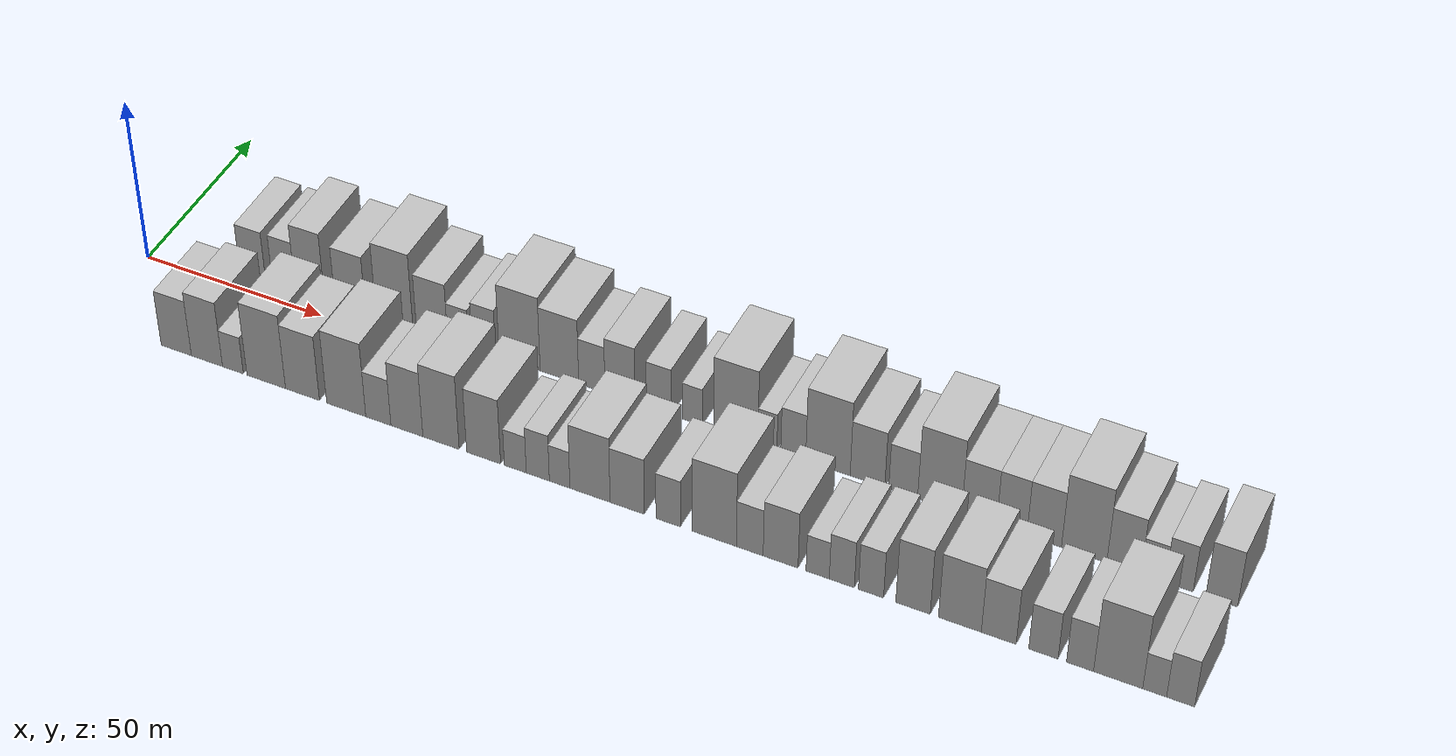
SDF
<sdf version="1.6">
 <world name="default">
  <scene>
   <sky><clouds><speed>12</speed></clouds></sky>
   <ambient>0.4 0.4 0.4 1</ambient>
   <background>0.7 0.7 0.7 1</background>
   <shadows>1</shadows>
  </scene>
  <gravity>0 0 -9.8066</gravity>
  <magnetic_field>6e-06 2.3e-05 -4.2e-05</magnetic_field>
  <physics default="0" name="default_physics" type="ode">
   <ode>
    <solver>
     <type>quick</type>
     <iters>10</iters>
     <sor>1.0</sor>
     <use_dynamic_moi_rescaling>0</use_dynamic_moi_rescaling>
    </solver>
    <constraints>
     <cfm>0</cfm>
     <erp>0.2</erp>
     <contact_max_correcting_vel>100</contact_max_correcting_vel>
     <contact_surface_layer>0.001</contact_surface_layer>
    </constraints>
   </ode>
   <max_step_size>0.004</max_step_size>
   <real_time_factor>1</real_time_factor>
   <real_time_update_rate>250</real_time_update_rate>
  </physics>
  <light name="sun" type="directional">
   <pose>0 0 10 0 0 0</pose>
   <diffuse>0.8 0.8 0.8 1</diffuse>
   <specular>0.2 0.2 0.2 1</specular>
   <attenuation>
    <range>1000</range>
    <constant>0.9</constant>
    <linear>0.01</linear>
    <quadratic>0.001</quadratic>
   </attenuation>
   <direction>-0.5 0.1 -0.9</direction>
  </light>
  <model name="building_1">
   <static>1</static>
   <pose>26.7301 16.0000 0 0.000000 0.000000 1.570796</pose>
   <link name="link">
    <pose>0 0 7.50 0 0 0</pose>
    <collision name="collision"><geometry><box><size>20.0000 7.4602 15.0000</size></box></geometry></collision>
    <visual name="visual">
     <cast_shadows>0</cast_shadows>
     <geometry><box><size>20.0000 7.4602 15.0000</size></box></geometry>
     <material>
      <script>
       <uri>model://HANNAS_wall/materials/scripts</uri>
       <uri>model://HANNAS_wall/materials/textures</uri>
       <name>vrc/HANNAS_wall</name>
      </script>
     </material>
    </visual>
   </link>
  </model>
  <model name="building_2">
   <static>1</static>
   <pose>35.7607 16.0000 0 0.000000 0.000000 1.570796</pose>
   <link name="link">
    <pose>0 0 7.50 0 0 0</pose>
    <collision name="collision"><geometry><box><size>20.0000 6.6010 15.0000</size></box></geometry></collision>
    <visual name="visual">
     <cast_shadows>0</cast_shadows>
     <geometry><box><size>20.0000 6.6010 15.0000</size></box></geometry>
     <material>
      <script>
       <uri>model://HANNAS_wall/materials/scripts</uri>
       <uri>model://HANNAS_wall/materials/textures</uri>
       <name>vrc/HANNAS_wall</name>
      </script>
     </material>
    </visual>
   </link>
  </model>
  <model name="building_3">
   <static>1</static>
   <pose>43.2785 16.0000 0 0.000000 0.000000 1.570796</pose>
   <link name="link">
    <pose>0 0 10.50 0 0 0</pose>
    <collision name="collision"><geometry><box><size>20.0000 8.4346 21.0000</size></box></geometry></collision>
    <visual name="visual">
     <cast_shadows>0</cast_shadows>
     <geometry><box><size>20.0000 8.4346 21.0000</size></box></geometry>
     <material>
      <script>
       <uri>model://HANNAS_wall/materials/scripts</uri>
       <uri>model://HANNAS_wall/materials/textures</uri>
       <name>vrc/HANNAS_wall</name>
      </script>
     </material>
    </visual>
   </link>
  </model>
  <model name="building_4">
   <static>1</static>
   <pose>54.8481 16.0000 0 0.000000 0.000000 1.570796</pose>
   <link name="link">
    <pose>0 0 9.00 0 0 0</pose>
    <collision name="collision"><geometry><box><size>20.0000 8.7046 18.0000</size></box></geometry></collision>
    <visual name="visual">
     <cast_shadows>0</cast_shadows>
     <geometry><box><size>20.0000 8.7046 18.0000</size></box></geometry>
     <material>
      <script>
       <uri>model://HANNAS_wall/materials/scripts</uri>
       <uri>model://HANNAS_wall/materials/textures</uri>
       <name>vrc/HANNAS_wall</name>
      </script>
     </material>
    </visual>
   </link>
  </model>
  <model name="building_5">
   <static>1</static>
   <pose>67.3862 16.0000 0 0.000000 0.000000 1.570796</pose>
   <link name="link">
    <pose>0 0 12.00 0 0 0</pose>
    <collision name="collision"><geometry><box><size>20.0000 10.3716 24.0000</size></box></geometry></collision>
    <visual name="visual">
     <cast_shadows>0</cast_shadows>
     <geometry><box><size>20.0000 10.3716 24.0000</size></box></geometry>
     <material>
      <script>
       <uri>model://HANNAS_wall/materials/scripts</uri>
       <uri>model://HANNAS_wall/materials/textures</uri>
       <name>vrc/HANNAS_wall</name>
      </script>
     </material>
    </visual>
   </link>
  </model>
  <model name="building_6">
   <static>1</static>
   <pose>77.9342 16.0000 0 0.000000 0.000000 1.570796</pose>
   <link name="link">
    <pose>0 0 9.00 0 0 0</pose>
    <collision name="collision"><geometry><box><size>20.0000 8.7245 18.0000</size></box></geometry></collision>
    <visual name="visual">
     <cast_shadows>0</cast_shadows>
     <geometry><box><size>20.0000 8.7245 18.0000</size></box></geometry>
     <material>
      <script>
       <uri>model://HANNAS_wall/materials/scripts</uri>
       <uri>model://HANNAS_wall/materials/textures</uri>
       <name>vrc/HANNAS_wall</name>
      </script>
     </material>
    </visual>
   </link>
  </model>
  <model name="building_7">
   <static>1</static>
   <pose>85.2117 16.0000 0 0.000000 0.000000 1.570796</pose>
   <link name="link">
    <pose>0 0 6.00 0 0 0</pose>
    <collision name="collision"><geometry><box><size>20.0000 5.8306 12.0000</size></box></geometry></collision>
    <visual name="visual">
     <cast_shadows>0</cast_shadows>
     <geometry><box><size>20.0000 5.8306 12.0000</size></box></geometry>
     <material>
      <script>
       <uri>model://HANNAS_wall/materials/scripts</uri>
       <uri>model://HANNAS_wall/materials/textures</uri>
       <name>vrc/HANNAS_wall</name>
      </script>
     </material>
    </visual>
   </link>
  </model>
  <model name="building_8">
   <static>1</static>
   <pose>92.3702 16.0000 0 0.000000 0.000000 1.570796</pose>
   <link name="link">
    <pose>0 0 7.50 0 0 0</pose>
    <collision name="collision"><geometry><box><size>20.0000 6.4863 15.0000</size></box></geometry></collision>
    <visual name="visual">
     <cast_shadows>0</cast_shadows>
     <geometry><box><size>20.0000 6.4863 15.0000</size></box></geometry>
     <material>
      <script>
       <uri>model://HANNAS_wall/materials/scripts</uri>
       <uri>model://HANNAS_wall/materials/textures</uri>
       <name>vrc/HANNAS_wall</name>
      </script>
     </material>
    </visual>
   </link>
  </model>
  <model name="building_9">
   <static>1</static>
   <pose>102.2161 16.0000 0 0.000000 0.000000 1.570796</pose>
   <link name="link">
    <pose>0 0 12.00 0 0 0</pose>
    <collision name="collision"><geometry><box><size>20.0000 11.2056 24.0000</size></box></geometry></collision>
    <visual name="visual">
     <cast_shadows>0</cast_shadows>
     <geometry><box><size>20.0000 11.2056 24.0000</size></box></geometry>
     <material>
      <script>
       <uri>model://HANNAS_wall/materials/scripts</uri>
       <uri>model://HANNAS_wall/materials/textures</uri>
       <name>vrc/HANNAS_wall</name>
      </script>
     </material>
    </visual>
   </link>
  </model>
  <model name="building_10">
   <static>1</static>
   <pose>113.0654 16.0000 0 0.000000 0.000000 1.570796</pose>
   <link name="link">
    <pose>0 0 10.50 0 0 0</pose>
    <collision name="collision"><geometry><box><size>20.0000 10.4930 21.0000</size></box></geometry></collision>
    <visual name="visual">
     <cast_shadows>0</cast_shadows>
     <geometry><box><size>20.0000 10.4930 21.0000</size></box></geometry>
     <material>
      <script>
       <uri>model://HANNAS_wall/materials/scripts</uri>
       <uri>model://HANNAS_wall/materials/textures</uri>
       <name>vrc/HANNAS_wall</name>
      </script>
     </material>
    </visual>
   </link>
  </model>
  <model name="building_11">
   <static>1</static>
   <pose>121.8566 16.0000 0 0.000000 0.000000 1.570796</pose>
   <link name="link">
    <pose>0 0 7.50 0 0 0</pose>
    <collision name="collision"><geometry><box><size>20.0000 7.0894 15.0000</size></box></geometry></collision>
    <visual name="visual">
     <cast_shadows>0</cast_shadows>
     <geometry><box><size>20.0000 7.0894 15.0000</size></box></geometry>
     <material>
      <script>
       <uri>model://HANNAS_wall/materials/scripts</uri>
       <uri>model://HANNAS_wall/materials/textures</uri>
       <name>vrc/HANNAS_wall</name>
      </script>
     </material>
    </visual>
   </link>
  </model>
  <model name="building_12">
   <static>1</static>
   <pose>129.4376 16.0000 0 0.000000 0.000000 1.570796</pose>
   <link name="link">
    <pose>0 0 9.00 0 0 0</pose>
    <collision name="collision"><geometry><box><size>20.0000 8.0727 18.0000</size></box></geometry></collision>
    <visual name="visual">
     <cast_shadows>0</cast_shadows>
     <geometry><box><size>20.0000 8.0727 18.0000</size></box></geometry>
     <material>
      <script>
       <uri>model://HANNAS_wall/materials/scripts</uri>
       <uri>model://HANNAS_wall/materials/textures</uri>
       <name>vrc/HANNAS_wall</name>
      </script>
     </material>
    </visual>
   </link>
  </model>
  <model name="building_13">
   <static>1</static>
   <pose>139.7923 16.0000 0 0.000000 0.000000 1.570796</pose>
   <link name="link">
    <pose>0 0 7.50 0 0 0</pose>
    <collision name="collision"><geometry><box><size>20.0000 6.6366 15.0000</size></box></geometry></collision>
    <visual name="visual">
     <cast_shadows>0</cast_shadows>
     <geometry><box><size>20.0000 6.6366 15.0000</size></box></geometry>
     <material>
      <script>
       <uri>model://HANNAS_wall/materials/scripts</uri>
       <uri>model://HANNAS_wall/materials/textures</uri>
       <name>vrc/HANNAS_wall</name>
      </script>
     </material>
    </visual>
   </link>
  </model>
  <model name="building_14">
   <static>1</static>
   <pose>148.7279 16.0000 0 0.000000 0.000000 1.570796</pose>
   <link name="link">
    <pose>0 0 6.00 0 0 0</pose>
    <collision name="collision"><geometry><box><size>20.0000 5.2347 12.0000</size></box></geometry></collision>
    <visual name="visual">
     <cast_shadows>0</cast_shadows>
     <geometry><box><size>20.0000 5.2347 12.0000</size></box></geometry>
     <material>
      <script>
       <uri>model://HANNAS_wall/materials/scripts</uri>
       <uri>model://HANNAS_wall/materials/textures</uri>
       <name>vrc/HANNAS_wall</name>
      </script>
     </material>
    </visual>
   </link>
  </model>
  <model name="building_15">
   <static>1</static>
   <pose>160.1381 16.0000 0 0.000000 0.000000 1.570796</pose>
   <link name="link">
    <pose>0 0 12.00 0 0 0</pose>
    <collision name="collision"><geometry><box><size>20.0000 11.5856 24.0000</size></box></geometry></collision>
    <visual name="visual">
     <cast_shadows>0</cast_shadows>
     <geometry><box><size>20.0000 11.5856 24.0000</size></box></geometry>
     <material>
      <script>
       <uri>model://HANNAS_wall/materials/scripts</uri>
       <uri>model://HANNAS_wall/materials/textures</uri>
       <name>vrc/HANNAS_wall</name>
      </script>
     </material>
    </visual>
   </link>
  </model>
  <model name="building_16">
   <static>1</static>
   <pose>168.4143 16.0000 0 0.000000 0.000000 1.570796</pose>
   <link name="link">
    <pose>0 0 6.00 0 0 0</pose>
    <collision name="collision"><geometry><box><size>20.0000 4.9667 12.0000</size></box></geometry></collision>
    <visual name="visual">
     <cast_shadows>0</cast_shadows>
     <geometry><box><size>20.0000 4.9667 12.0000</size></box></geometry>
     <material>
      <script>
       <uri>model://HANNAS_wall/materials/scripts</uri>
       <uri>model://HANNAS_wall/materials/textures</uri>
       <name>vrc/HANNAS_wall</name>
      </script>
     </material>
    </visual>
   </link>
  </model>
  <model name="building_17">
   <static>1</static>
   <pose>175.1251 16.0000 0 0.000000 0.000000 1.570796</pose>
   <link name="link">
    <pose>0 0 7.50 0 0 0</pose>
    <collision name="collision"><geometry><box><size>20.0000 6.4549 15.0000</size></box></geometry></collision>
    <visual name="visual">
     <cast_shadows>0</cast_shadows>
     <geometry><box><size>20.0000 6.4549 15.0000</size></box></geometry>
     <material>
      <script>
       <uri>model://HANNAS_wall/materials/scripts</uri>
       <uri>model://HANNAS_wall/materials/textures</uri>
       <name>vrc/HANNAS_wall</name>
      </script>
     </material>
    </visual>
   </link>
  </model>
  <model name="building_18">
   <static>1</static>
   <pose>184.0758 16.0000 0 0.000000 0.000000 1.570796</pose>
   <link name="link">
    <pose>0 0 12.00 0 0 0</pose>
    <collision name="collision"><geometry><box><size>20.0000 11.4465 24.0000</size></box></geometry></collision>
    <visual name="visual">
     <cast_shadows>0</cast_shadows>
     <geometry><box><size>20.0000 11.4465 24.0000</size></box></geometry>
     <material>
      <script>
       <uri>model://HANNAS_wall/materials/scripts</uri>
       <uri>model://HANNAS_wall/materials/textures</uri>
       <name>vrc/HANNAS_wall</name>
      </script>
     </material>
    </visual>
   </link>
  </model>
  <model name="building_19">
   <static>1</static>
   <pose>194.2236 16.0000 0 0.000000 0.000000 1.570796</pose>
   <link name="link">
    <pose>0 0 9.00 0 0 0</pose>
    <collision name="collision"><geometry><box><size>20.0000 8.8491 18.0000</size></box></geometry></collision>
    <visual name="visual">
     <cast_shadows>0</cast_shadows>
     <geometry><box><size>20.0000 8.8491 18.0000</size></box></geometry>
     <material>
      <script>
       <uri>model://HANNAS_wall/materials/scripts</uri>
       <uri>model://HANNAS_wall/materials/textures</uri>
       <name>vrc/HANNAS_wall</name>
      </script>
     </material>
    </visual>
   </link>
  </model>
  <model name="building_20">
   <static>1</static>
   <pose>203.2974 16.0000 0 0.000000 0.000000 1.570796</pose>
   <link name="link">
    <pose>0 0 7.50 0 0 0</pose>
    <collision name="collision"><geometry><box><size>20.0000 7.2986 15.0000</size></box></geometry></collision>
    <visual name="visual">
     <cast_shadows>0</cast_shadows>
     <geometry><box><size>20.0000 7.2986 15.0000</size></box></geometry>
     <material>
      <script>
       <uri>model://HANNAS_wall/materials/scripts</uri>
       <uri>model://HANNAS_wall/materials/textures</uri>
       <name>vrc/HANNAS_wall</name>
      </script>
     </material>
    </visual>
   </link>
  </model>
  <model name="building_21">
   <static>1</static>
   <pose>212.4936 16.0000 0 0.000000 0.000000 1.570796</pose>
   <link name="link">
    <pose>0 0 12.00 0 0 0</pose>
    <collision name="collision"><geometry><box><size>20.0000 11.0938 24.0000</size></box></geometry></collision>
    <visual name="visual">
     <cast_shadows>0</cast_shadows>
     <geometry><box><size>20.0000 11.0938 24.0000</size></box></geometry>
     <material>
      <script>
       <uri>model://HANNAS_wall/materials/scripts</uri>
       <uri>model://HANNAS_wall/materials/textures</uri>
       <name>vrc/HANNAS_wall</name>
      </script>
     </material>
    </visual>
   </link>
  </model>
  <model name="building_22">
   <static>1</static>
   <pose>222.3865 16.0000 0 0.000000 0.000000 1.570796</pose>
   <link name="link">
    <pose>0 0 9.00 0 0 0</pose>
    <collision name="collision"><geometry><box><size>20.0000 8.6919 18.0000</size></box></geometry></collision>
    <visual name="visual">
     <cast_shadows>0</cast_shadows>
     <geometry><box><size>20.0000 8.6919 18.0000</size></box></geometry>
     <material>
      <script>
       <uri>model://HANNAS_wall/materials/scripts</uri>
       <uri>model://HANNAS_wall/materials/textures</uri>
       <name>vrc/HANNAS_wall</name>
      </script>
     </material>
    </visual>
   </link>
  </model>
  <model name="building_23">
   <static>1</static>
   <pose>230.4803 16.0000 0 0.000000 0.000000 1.570796</pose>
   <link name="link">
    <pose>0 0 9.00 0 0 0</pose>
    <collision name="collision"><geometry><box><size>20.0000 7.4958 18.0000</size></box></geometry></collision>
    <visual name="visual">
     <cast_shadows>0</cast_shadows>
     <geometry><box><size>20.0000 7.4958 18.0000</size></box></geometry>
     <material>
      <script>
       <uri>model://HANNAS_wall/materials/scripts</uri>
       <uri>model://HANNAS_wall/materials/textures</uri>
       <name>vrc/HANNAS_wall</name>
      </script>
     </material>
    </visual>
   </link>
  </model>
  <model name="building_24">
   <static>1</static>
   <pose>238.4895 16.0000 0 0.000000 0.000000 1.570796</pose>
   <link name="link">
    <pose>0 0 9.00 0 0 0</pose>
    <collision name="collision"><geometry><box><size>20.0000 8.5227 18.0000</size></box></geometry></collision>
    <visual name="visual">
     <cast_shadows>0</cast_shadows>
     <geometry><box><size>20.0000 8.5227 18.0000</size></box></geometry>
     <material>
      <script>
       <uri>model://HANNAS_wall/materials/scripts</uri>
       <uri>model://HANNAS_wall/materials/textures</uri>
       <name>vrc/HANNAS_wall</name>
      </script>
     </material>
    </visual>
   </link>
  </model>
  <model name="building_25">
   <static>1</static>
   <pose>248.2883 16.0000 0 0.000000 0.000000 1.570796</pose>
   <link name="link">
    <pose>0 0 12.00 0 0 0</pose>
    <collision name="collision"><geometry><box><size>20.0000 11.0749 24.0000</size></box></geometry></collision>
    <visual name="visual">
     <cast_shadows>0</cast_shadows>
     <geometry><box><size>20.0000 11.0749 24.0000</size></box></geometry>
     <material>
      <script>
       <uri>model://HANNAS_wall/materials/scripts</uri>
       <uri>model://HANNAS_wall/materials/textures</uri>
       <name>vrc/HANNAS_wall</name>
      </script>
     </material>
    </visual>
   </link>
  </model>
  <model name="building_26">
   <static>1</static>
   <pose>257.9700 16.0000 0 0.000000 0.000000 1.570796</pose>
   <link name="link">
    <pose>0 0 9.00 0 0 0</pose>
    <collision name="collision"><geometry><box><size>20.0000 8.2885 18.0000</size></box></geometry></collision>
    <visual name="visual">
     <cast_shadows>0</cast_shadows>
     <geometry><box><size>20.0000 8.2885 18.0000</size></box></geometry>
     <material>
      <script>
       <uri>model://HANNAS_wall/materials/scripts</uri>
       <uri>model://HANNAS_wall/materials/textures</uri>
       <name>vrc/HANNAS_wall</name>
      </script>
     </material>
    </visual>
   </link>
  </model>
  <model name="building_27">
   <static>1</static>
   <pose>265.0842 16.0000 0 0.000000 0.000000 1.570796</pose>
   <link name="link">
    <pose>0 0 6.00 0 0 0</pose>
    <collision name="collision"><geometry><box><size>20.0000 5.9399 12.0000</size></box></geometry></collision>
    <visual name="visual">
     <cast_shadows>0</cast_shadows>
     <geometry><box><size>20.0000 5.9399 12.0000</size></box></geometry>
     <material>
      <script>
       <uri>model://HANNAS_wall/materials/scripts</uri>
       <uri>model://HANNAS_wall/materials/textures</uri>
       <name>vrc/HANNAS_wall</name>
      </script>
     </material>
    </visual>
   </link>
  </model>
  <model name="building_28">
   <static>1</static>
   <pose>271.3582 16.0000 0 0.000000 0.000000 1.570796</pose>
   <link name="link">
    <pose>0 0 7.50 0 0 0</pose>
    <collision name="collision"><geometry><box><size>20.0000 6.6079 15.0000</size></box></geometry></collision>
    <visual name="visual">
     <cast_shadows>0</cast_shadows>
     <geometry><box><size>20.0000 6.6079 15.0000</size></box></geometry>
     <material>
      <script>
       <uri>model://HANNAS_wall/materials/scripts</uri>
       <uri>model://HANNAS_wall/materials/textures</uri>
       <name>vrc/HANNAS_wall</name>
      </script>
     </material>
    </visual>
   </link>
  </model>
  <model name="building_29">
   <static>1</static>
   <pose>281.4448 16.0000 0 0.000000 0.000000 1.570796</pose>
   <link name="link">
    <pose>0 0 9.00 0 0 0</pose>
    <collision name="collision"><geometry><box><size>20.0000 7.5653 18.0000</size></box></geometry></collision>
    <visual name="visual">
     <cast_shadows>0</cast_shadows>
     <geometry><box><size>20.0000 7.5653 18.0000</size></box></geometry>
     <material>
      <script>
       <uri>model://HANNAS_wall/materials/scripts</uri>
       <uri>model://HANNAS_wall/materials/textures</uri>
       <name>vrc/HANNAS_wall</name>
      </script>
     </material>
    </visual>
   </link>
  </model>
  <model name="building_30">
   <static>1</static>
   <pose>24.3062 -16.0000 0 0.000000 0.000000 1.570796</pose>
   <link name="link">
    <pose>0 0 9.00 0 0 0</pose>
    <collision name="collision"><geometry><box><size>20.0000 8.6124 18.0000</size></box></geometry></collision>
    <visual name="visual">
     <cast_shadows>0</cast_shadows>
     <geometry><box><size>20.0000 8.6124 18.0000</size></box></geometry>
     <material>
      <script>
       <uri>model://HANNAS_wall/materials/scripts</uri>
       <uri>model://HANNAS_wall/materials/textures</uri>
       <name>vrc/HANNAS_wall</name>
      </script>
     </material>
    </visual>
   </link>
  </model>
  <model name="building_31">
   <static>1</static>
   <pose>33.0323 -16.0000 0 0.000000 0.000000 1.570796</pose>
   <link name="link">
    <pose>0 0 10.50 0 0 0</pose>
    <collision name="collision"><geometry><box><size>20.0000 8.8399 21.0000</size></box></geometry></collision>
    <visual name="visual">
     <cast_shadows>0</cast_shadows>
     <geometry><box><size>20.0000 8.8399 21.0000</size></box></geometry>
     <material>
      <script>
       <uri>model://HANNAS_wall/materials/scripts</uri>
       <uri>model://HANNAS_wall/materials/textures</uri>
       <name>vrc/HANNAS_wall</name>
      </script>
     </material>
    </visual>
   </link>
  </model>
  <model name="building_32">
   <static>1</static>
   <pose>40.4021 -16.0000 0 0.000000 0.000000 1.570796</pose>
   <link name="link">
    <pose>0 0 6.00 0 0 0</pose>
    <collision name="collision"><geometry><box><size>20.0000 5.8998 12.0000</size></box></geometry></collision>
    <visual name="visual">
     <cast_shadows>0</cast_shadows>
     <geometry><box><size>20.0000 5.8998 12.0000</size></box></geometry>
     <material>
      <script>
       <uri>model://HANNAS_wall/materials/scripts</uri>
       <uri>model://HANNAS_wall/materials/textures</uri>
       <name>vrc/HANNAS_wall</name>
      </script>
     </material>
    </visual>
   </link>
  </model>
  <model name="building_33">
   <static>1</static>
   <pose>49.7587 -16.0000 0 0.000000 0.000000 1.570796</pose>
   <link name="link">
    <pose>0 0 12.00 0 0 0</pose>
    <collision name="collision"><geometry><box><size>20.0000 10.8133 24.0000</size></box></geometry></collision>
    <visual name="visual">
     <cast_shadows>0</cast_shadows>
     <geometry><box><size>20.0000 10.8133 24.0000</size></box></geometry>
     <material>
      <script>
       <uri>model://HANNAS_wall/materials/scripts</uri>
       <uri>model://HANNAS_wall/materials/textures</uri>
       <name>vrc/HANNAS_wall</name>
      </script>
     </material>
    </visual>
   </link>
  </model>
  <model name="building_34">
   <static>1</static>
   <pose>59.8910 -16.0000 0 0.000000 0.000000 1.570796</pose>
   <link name="link">
    <pose>0 0 10.50 0 0 0</pose>
    <collision name="collision"><geometry><box><size>20.0000 9.4514 21.0000</size></box></geometry></collision>
    <visual name="visual">
     <cast_shadows>0</cast_shadows>
     <geometry><box><size>20.0000 9.4514 21.0000</size></box></geometry>
     <material>
      <script>
       <uri>model://HANNAS_wall/materials/scripts</uri>
       <uri>model://HANNAS_wall/materials/textures</uri>
       <name>vrc/HANNAS_wall</name>
      </script>
     </material>
    </visual>
   </link>
  </model>
  <model name="building_35">
   <static>1</static>
   <pose>72.0009 -16.0000 0 0.000000 0.000000 1.570796</pose>
   <link name="link">
    <pose>0 0 12.00 0 0 0</pose>
    <collision name="collision"><geometry><box><size>20.0000 10.7682 24.0000</size></box></geometry></collision>
    <visual name="visual">
     <cast_shadows>0</cast_shadows>
     <geometry><box><size>20.0000 10.7682 24.0000</size></box></geometry>
     <material>
      <script>
       <uri>model://HANNAS_wall/materials/scripts</uri>
       <uri>model://HANNAS_wall/materials/textures</uri>
       <name>vrc/HANNAS_wall</name>
      </script>
     </material>
    </visual>
   </link>
  </model>
  <model name="building_36">
   <static>1</static>
   <pose>80.8243 -16.0000 0 0.000000 0.000000 1.570796</pose>
   <link name="link">
    <pose>0 0 7.50 0 0 0</pose>
    <collision name="collision"><geometry><box><size>20.0000 6.8786 15.0000</size></box></geometry></collision>
    <visual name="visual">
     <cast_shadows>0</cast_shadows>
     <geometry><box><size>20.0000 6.8786 15.0000</size></box></geometry>
     <material>
      <script>
       <uri>model://HANNAS_wall/materials/scripts</uri>
       <uri>model://HANNAS_wall/materials/textures</uri>
       <name>vrc/HANNAS_wall</name>
      </script>
     </material>
    </visual>
   </link>
  </model>
  <model name="building_37">
   <static>1</static>
   <pose>88.6150 -16.0000 0 0.000000 0.000000 1.570796</pose>
   <link name="link">
    <pose>0 0 10.50 0 0 0</pose>
    <collision name="collision"><geometry><box><size>20.0000 8.7029 21.0000</size></box></geometry></collision>
    <visual name="visual">
     <cast_shadows>0</cast_shadows>
     <geometry><box><size>20.0000 8.7029 21.0000</size></box></geometry>
     <material>
      <script>
       <uri>model://HANNAS_wall/materials/scripts</uri>
       <uri>model://HANNAS_wall/materials/textures</uri>
       <name>vrc/HANNAS_wall</name>
      </script>
     </material>
    </visual>
   </link>
  </model>
  <model name="building_38">
   <static>1</static>
   <pose>97.8653 -16.0000 0 0.000000 0.000000 1.570796</pose>
   <link name="link">
    <pose>0 0 12.00 0 0 0</pose>
    <collision name="collision"><geometry><box><size>20.0000 9.7976 24.0000</size></box></geometry></collision>
    <visual name="visual">
     <cast_shadows>0</cast_shadows>
     <geometry><box><size>20.0000 9.7976 24.0000</size></box></geometry>
     <material>
      <script>
       <uri>model://HANNAS_wall/materials/scripts</uri>
       <uri>model://HANNAS_wall/materials/textures</uri>
       <name>vrc/HANNAS_wall</name>
      </script>
     </material>
    </visual>
   </link>
  </model>
  <model name="building_39">
   <static>1</static>
   <pose>109.3156 -16.0000 0 0.000000 0.000000 1.570796</pose>
   <link name="link">
    <pose>0 0 10.50 0 0 0</pose>
    <collision name="collision"><geometry><box><size>20.0000 9.1031 21.0000</size></box></geometry></collision>
    <visual name="visual">
     <cast_shadows>0</cast_shadows>
     <geometry><box><size>20.0000 9.1031 21.0000</size></box></geometry>
     <material>
      <script>
       <uri>model://HANNAS_wall/materials/scripts</uri>
       <uri>model://HANNAS_wall/materials/textures</uri>
       <name>vrc/HANNAS_wall</name>
      </script>
     </material>
    </visual>
   </link>
  </model>
  <model name="building_40">
   <static>1</static>
   <pose>117.7738 -16.0000 0 0.000000 0.000000 1.570796</pose>
   <link name="link">
    <pose>0 0 6.00 0 0 0</pose>
    <collision name="collision"><geometry><box><size>20.0000 5.8134 12.0000</size></box></geometry></collision>
    <visual name="visual">
     <cast_shadows>0</cast_shadows>
     <geometry><box><size>20.0000 5.8134 12.0000</size></box></geometry>
     <material>
      <script>
       <uri>model://HANNAS_wall/materials/scripts</uri>
       <uri>model://HANNAS_wall/materials/textures</uri>
       <name>vrc/HANNAS_wall</name>
      </script>
     </material>
    </visual>
   </link>
  </model>
  <model name="building_41">
   <static>1</static>
   <pose>123.7326 -16.0000 0 0.000000 0.000000 1.570796</pose>
   <link name="link">
    <pose>0 0 7.50 0 0 0</pose>
    <collision name="collision"><geometry><box><size>20.0000 6.1042 15.0000</size></box></geometry></collision>
    <visual name="visual">
     <cast_shadows>0</cast_shadows>
     <geometry><box><size>20.0000 6.1042 15.0000</size></box></geometry>
     <material>
      <script>
       <uri>model://HANNAS_wall/materials/scripts</uri>
       <uri>model://HANNAS_wall/materials/textures</uri>
       <name>vrc/HANNAS_wall</name>
      </script>
     </material>
    </visual>
   </link>
  </model>
  <model name="building_42">
   <static>1</static>
   <pose>129.4865 -16.0000 0 0.000000 0.000000 1.570796</pose>
   <link name="link">
    <pose>0 0 6.00 0 0 0</pose>
    <collision name="collision"><geometry><box><size>20.0000 5.4037 12.0000</size></box></geometry></collision>
    <visual name="visual">
     <cast_shadows>0</cast_shadows>
     <geometry><box><size>20.0000 5.4037 12.0000</size></box></geometry>
     <material>
      <script>
       <uri>model://HANNAS_wall/materials/scripts</uri>
       <uri>model://HANNAS_wall/materials/textures</uri>
       <name>vrc/HANNAS_wall</name>
      </script>
     </material>
    </visual>
   </link>
  </model>
  <model name="building_43">
   <static>1</static>
   <pose>137.4364 -16.0000 0 0.000000 0.000000 1.570796</pose>
   <link name="link">
    <pose>0 0 10.50 0 0 0</pose>
    <collision name="collision"><geometry><box><size>20.0000 10.4961 21.0000</size></box></geometry></collision>
    <visual name="visual">
     <cast_shadows>0</cast_shadows>
     <geometry><box><size>20.0000 10.4961 21.0000</size></box></geometry>
     <material>
      <script>
       <uri>model://HANNAS_wall/materials/scripts</uri>
       <uri>model://HANNAS_wall/materials/textures</uri>
       <name>vrc/HANNAS_wall</name>
      </script>
     </material>
    </visual>
   </link>
  </model>
  <model name="building_44">
   <static>1</static>
   <pose>147.1324 -16.0000 0 0.000000 0.000000 1.570796</pose>
   <link name="link">
    <pose>0 0 9.00 0 0 0</pose>
    <collision name="collision"><geometry><box><size>20.0000 8.8958 18.0000</size></box></geometry></collision>
    <visual name="visual">
     <cast_shadows>0</cast_shadows>
     <geometry><box><size>20.0000 8.8958 18.0000</size></box></geometry>
     <material>
      <script>
       <uri>model://HANNAS_wall/materials/scripts</uri>
       <uri>model://HANNAS_wall/materials/textures</uri>
       <name>vrc/HANNAS_wall</name>
      </script>
     </material>
    </visual>
   </link>
  </model>
  <model name="building_45">
   <static>1</static>
   <pose>157.7307 -16.0000 0 0.000000 0.000000 1.570796</pose>
   <link name="link">
    <pose>0 0 7.50 0 0 0</pose>
    <collision name="collision"><geometry><box><size>20.0000 6.3008 15.0000</size></box></geometry></collision>
    <visual name="visual">
     <cast_shadows>0</cast_shadows>
     <geometry><box><size>20.0000 6.3008 15.0000</size></box></geometry>
     <material>
      <script>
       <uri>model://HANNAS_wall/materials/scripts</uri>
       <uri>model://HANNAS_wall/materials/textures</uri>
       <name>vrc/HANNAS_wall</name>
      </script>
     </material>
    </visual>
   </link>
  </model>
  <model name="building_46">
   <static>1</static>
   <pose>169.5088 -16.0000 0 0.000000 0.000000 1.570796</pose>
   <link name="link">
    <pose>0 0 12.00 0 0 0</pose>
    <collision name="collision"><geometry><box><size>20.0000 11.2554 24.0000</size></box></geometry></collision>
    <visual name="visual">
     <cast_shadows>0</cast_shadows>
     <geometry><box><size>20.0000 11.2554 24.0000</size></box></geometry>
     <material>
      <script>
       <uri>model://HANNAS_wall/materials/scripts</uri>
       <uri>model://HANNAS_wall/materials/textures</uri>
       <name>vrc/HANNAS_wall</name>
      </script>
     </material>
    </visual>
   </link>
  </model>
  <model name="building_47">
   <static>1</static>
   <pose>178.5272 -16.0000 0 0.000000 0.000000 1.570796</pose>
   <link name="link">
    <pose>0 0 7.50 0 0 0</pose>
    <collision name="collision"><geometry><box><size>20.0000 6.7813 15.0000</size></box></geometry></collision>
    <visual name="visual">
     <cast_shadows>0</cast_shadows>
     <geometry><box><size>20.0000 6.7813 15.0000</size></box></geometry>
     <material>
      <script>
       <uri>model://HANNAS_wall/materials/scripts</uri>
       <uri>model://HANNAS_wall/materials/textures</uri>
       <name>vrc/HANNAS_wall</name>
      </script>
     </material>
    </visual>
   </link>
  </model>
  <model name="building_48">
   <static>1</static>
   <pose>186.3066 -16.0000 0 0.000000 0.000000 1.570796</pose>
   <link name="link">
    <pose>0 0 9.00 0 0 0</pose>
    <collision name="collision"><geometry><box><size>20.0000 8.7774 18.0000</size></box></geometry></collision>
    <visual name="visual">
     <cast_shadows>0</cast_shadows>
     <geometry><box><size>20.0000 8.7774 18.0000</size></box></geometry>
     <material>
      <script>
       <uri>model://HANNAS_wall/materials/scripts</uri>
       <uri>model://HANNAS_wall/materials/textures</uri>
       <name>vrc/HANNAS_wall</name>
      </script>
     </material>
    </visual>
   </link>
  </model>
  <model name="building_49">
   <static>1</static>
   <pose>195.5950 -16.0000 0 0.000000 0.000000 1.570796</pose>
   <link name="link">
    <pose>0 0 6.00 0 0 0</pose>
    <collision name="collision"><geometry><box><size>20.0000 5.7994 12.0000</size></box></geometry></collision>
    <visual name="visual">
     <cast_shadows>0</cast_shadows>
     <geometry><box><size>20.0000 5.7994 12.0000</size></box></geometry>
     <material>
      <script>
       <uri>model://HANNAS_wall/materials/scripts</uri>
       <uri>model://HANNAS_wall/materials/textures</uri>
       <name>vrc/HANNAS_wall</name>
      </script>
     </material>
    </visual>
   </link>
  </model>
  <model name="building_50">
   <static>1</static>
   <pose>201.6093 -16.0000 0 0.000000 0.000000 1.570796</pose>
   <link name="link">
    <pose>0 0 7.50 0 0 0</pose>
    <collision name="collision"><geometry><box><size>20.0000 6.2292 15.0000</size></box></geometry></collision>
    <visual name="visual">
     <cast_shadows>0</cast_shadows>
     <geometry><box><size>20.0000 6.2292 15.0000</size></box></geometry>
     <material>
      <script>
       <uri>model://HANNAS_wall/materials/scripts</uri>
       <uri>model://HANNAS_wall/materials/textures</uri>
       <name>vrc/HANNAS_wall</name>
      </script>
     </material>
    </visual>
   </link>
  </model>
  <model name="building_51">
   <static>1</static>
   <pose>208.8307 -16.0000 0 0.000000 0.000000 1.570796</pose>
   <link name="link">
    <pose>0 0 7.50 0 0 0</pose>
    <collision name="collision"><geometry><box><size>20.0000 6.2136 15.0000</size></box></geometry></collision>
    <visual name="visual">
     <cast_shadows>0</cast_shadows>
     <geometry><box><size>20.0000 6.2136 15.0000</size></box></geometry>
     <material>
      <script>
       <uri>model://HANNAS_wall/materials/scripts</uri>
       <uri>model://HANNAS_wall/materials/textures</uri>
       <name>vrc/HANNAS_wall</name>
      </script>
     </material>
    </visual>
   </link>
  </model>
  <model name="building_52">
   <static>1</static>
   <pose>219.1496 -16.0000 0 0.000000 0.000000 1.570796</pose>
   <link name="link">
    <pose>0 0 10.50 0 0 0</pose>
    <collision name="collision"><geometry><box><size>20.0000 8.4243 21.0000</size></box></geometry></collision>
    <visual name="visual">
     <cast_shadows>0</cast_shadows>
     <geometry><box><size>20.0000 8.4243 21.0000</size></box></geometry>
     <material>
      <script>
       <uri>model://HANNAS_wall/materials/scripts</uri>
       <uri>model://HANNAS_wall/materials/textures</uri>
       <name>vrc/HANNAS_wall</name>
      </script>
     </material>
    </visual>
   </link>
  </model>
  <model name="building_53">
   <static>1</static>
   <pose>230.5541 -16.0000 0 0.000000 0.000000 1.570796</pose>
   <link name="link">
    <pose>0 0 10.50 0 0 0</pose>
    <collision name="collision"><geometry><box><size>20.0000 10.3846 21.0000</size></box></geometry></collision>
    <visual name="visual">
     <cast_shadows>0</cast_shadows>
     <geometry><box><size>20.0000 10.3846 21.0000</size></box></geometry>
     <material>
      <script>
       <uri>model://HANNAS_wall/materials/scripts</uri>
       <uri>model://HANNAS_wall/materials/textures</uri>
       <name>vrc/HANNAS_wall</name>
      </script>
     </material>
    </visual>
   </link>
  </model>
  <model name="building_54">
   <static>1</static>
   <pose>239.9381 -16.0000 0 0.000000 0.000000 1.570796</pose>
   <link name="link">
    <pose>0 0 9.00 0 0 0</pose>
    <collision name="collision"><geometry><box><size>20.0000 8.3835 18.0000</size></box></geometry></collision>
    <visual name="visual">
     <cast_shadows>0</cast_shadows>
     <geometry><box><size>20.0000 8.3835 18.0000</size></box></geometry>
     <material>
      <script>
       <uri>model://HANNAS_wall/materials/scripts</uri>
       <uri>model://HANNAS_wall/materials/textures</uri>
       <name>vrc/HANNAS_wall</name>
      </script>
     </material>
    </visual>
   </link>
  </model>
  <model name="building_55">
   <static>1</static>
   <pose>250.6253 -16.0000 0 0.000000 0.000000 1.570796</pose>
   <link name="link">
    <pose>0 0 7.50 0 0 0</pose>
    <collision name="collision"><geometry><box><size>20.0000 6.9909 15.0000</size></box></geometry></collision>
    <visual name="visual">
     <cast_shadows>0</cast_shadows>
     <geometry><box><size>20.0000 6.9909 15.0000</size></box></geometry>
     <material>
      <script>
       <uri>model://HANNAS_wall/materials/scripts</uri>
       <uri>model://HANNAS_wall/materials/textures</uri>
       <name>vrc/HANNAS_wall</name>
      </script>
     </material>
    </visual>
   </link>
  </model>
  <model name="building_56">
   <static>1</static>
   <pose>259.3137 -16.0000 0 0.000000 0.000000 1.570796</pose>
   <link name="link">
    <pose>0 0 7.50 0 0 0</pose>
    <collision name="collision"><geometry><box><size>20.0000 6.3858 15.0000</size></box></geometry></collision>
    <visual name="visual">
     <cast_shadows>0</cast_shadows>
     <geometry><box><size>20.0000 6.3858 15.0000</size></box></geometry>
     <material>
      <script>
       <uri>model://HANNAS_wall/materials/scripts</uri>
       <uri>model://HANNAS_wall/materials/textures</uri>
       <name>vrc/HANNAS_wall</name>
      </script>
     </material>
    </visual>
   </link>
  </model>
  <model name="building_57">
   <static>1</static>
   <pose>268.2804 -16.0000 0 0.000000 0.000000 1.570796</pose>
   <link name="link">
    <pose>0 0 12.00 0 0 0</pose>
    <collision name="collision"><geometry><box><size>20.0000 11.5476 24.0000</size></box></geometry></collision>
    <visual name="visual">
     <cast_shadows>0</cast_shadows>
     <geometry><box><size>20.0000 11.5476 24.0000</size></box></geometry>
     <material>
      <script>
       <uri>model://HANNAS_wall/materials/scripts</uri>
       <uri>model://HANNAS_wall/materials/textures</uri>
       <name>vrc/HANNAS_wall</name>
      </script>
     </material>
    </visual>
   </link>
  </model>
  <model name="building_58">
   <static>1</static>
   <pose>276.8312 -16.0000 0 0.000000 0.000000 1.570796</pose>
   <link name="link">
    <pose>0 0 6.00 0 0 0</pose>
    <collision name="collision"><geometry><box><size>20.0000 5.5540 12.0000</size></box></geometry></collision>
    <visual name="visual">
     <cast_shadows>0</cast_shadows>
     <geometry><box><size>20.0000 5.5540 12.0000</size></box></geometry>
     <material>
      <script>
       <uri>model://HANNAS_wall/materials/scripts</uri>
       <uri>model://HANNAS_wall/materials/textures</uri>
       <name>vrc/HANNAS_wall</name>
      </script>
     </material>
    </visual>
   </link>
  </model>
  <model name="building_59">
   <static>1</static>
   <pose>282.8715 -16.0000 0 0.000000 0.000000 1.570796</pose>
   <link name="link">
    <pose>0 0 7.50 0 0 0</pose>
    <collision name="collision"><geometry><box><size>20.0000 6.5266 15.0000</size></box></geometry></collision>
    <visual name="visual">
     <cast_shadows>0</cast_shadows>
     <geometry><box><size>20.0000 6.5266 15.0000</size></box></geometry>
     <material>
      <script>
       <uri>model://HANNAS_wall/materials/scripts</uri>
       <uri>model://HANNAS_wall/materials/textures</uri>
       <name>vrc/HANNAS_wall</name>
      </script>
     </material>
    </visual>
   </link>
  </model>
 </world>
</sdf>
